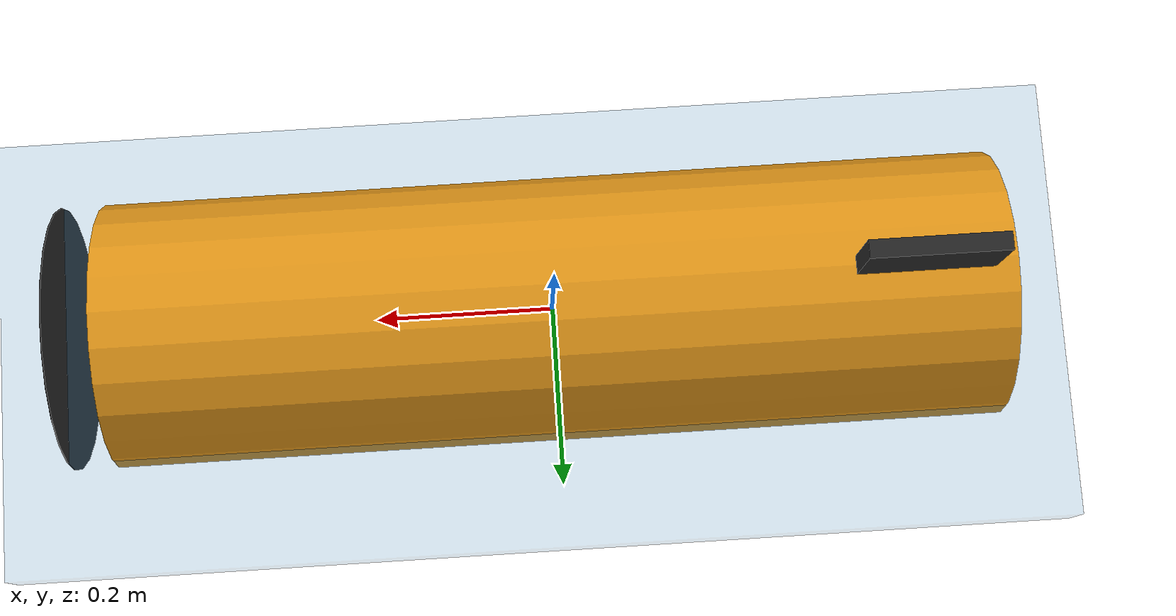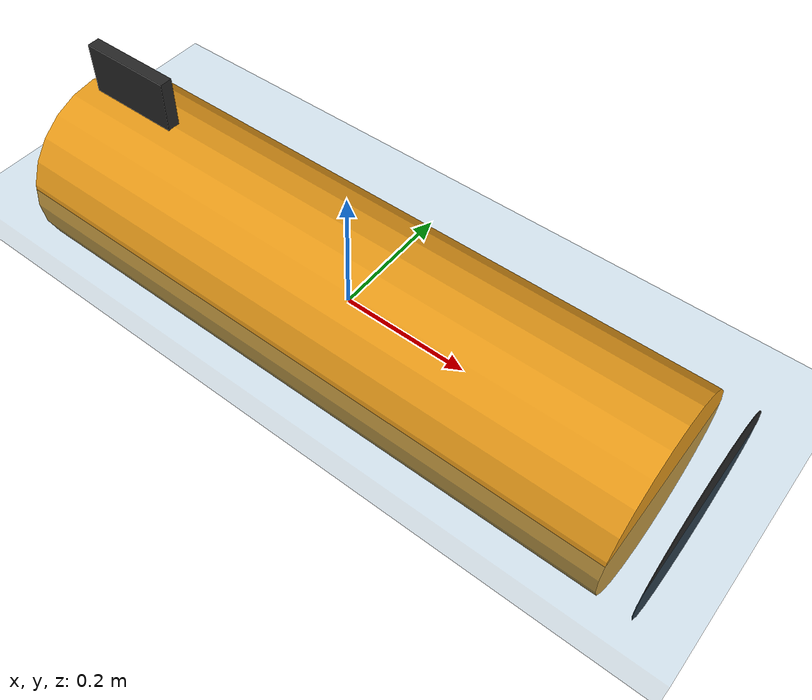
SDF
<?xml version="1.0"?>
<sdf version="1.9">
  <world name="auv_world">

    <physics name="1ms" type="dartsim">
      <max_step_size>0.001</max_step_size>
      <real_time_factor>1.0</real_time_factor>
    </physics>

    <plugin filename="gz-sim-physics-system" name="gz::sim::systems::Physics" />
    <plugin filename="gz-sim-user-commands-system" name="gz::sim::systems::UserCommands" />
    <plugin filename="gz-sim-scene-broadcaster-system" name="gz::sim::systems::SceneBroadcaster" />
    <plugin filename="gz-sim-sensors-system" name="gz::sim::systems::Sensors">
      <render_engine>ogre2</render_engine>
    </plugin>

    <plugin filename="gz-sim-buoyancy-system" name="gz::sim::systems::Buoyancy">
      <uniform_fluid_density>1000</uniform_fluid_density>
    </plugin>

    <scene>
      <ambient>0.35 0.45 0.55 1</ambient>
      <background>0.1 0.25 0.35 1</background>
      <grid>false</grid>
    </scene>

    <light type="directional" name="sun">
      <cast_shadows>true</cast_shadows>
      <pose>0 0 10 0 0 0</pose>
      <diffuse>0.7 0.8 0.85 1</diffuse>
      <specular>0.3 0.3 0.3 1</specular>
      <attenuation>
        <range>1000</range>
        <constant>0.9</constant>
        <linear>0.01</linear>
        <quadratic>0.001</quadratic>
      </attenuation>
      <direction>-0.3 0.2 -0.9</direction>
    </light>

    <!-- Seabed, ~6 m below the surface. -->
    <model name="seabed">
      <static>true</static>
      <pose>0 0 -25 0 0 0</pose>
      <link name="link">
        <collision name="collision">
          <geometry>
            <plane>
              <normal>0 0 1</normal>
              <size>60 60</size>
            </plane>
          </geometry>
        </collision>
        <visual name="visual">
          <geometry>
            <plane>
              <normal>0 0 1</normal>
              <size>60 60</size>
            </plane>
          </geometry>
          <material>
            <ambient>0.55 0.5 0.35 1</ambient>
            <diffuse>0.6 0.55 0.4 1</diffuse>
          </material>
        </visual>
      </link>
    </model>

    <!-- Waterline marker at z=0, visual-only (no collision), purely so the
         demo video shows depth relative to the surface. -->
    <model name="waterline">
      <static>true</static>
      <pose>0 0 0 0 0 0</pose>
      <link name="link">
        <visual name="visual">
          <transparency>0.85</transparency>
          <geometry>
            <plane>
              <normal>0 0 1</normal>
              <size>60 60</size>
            </plane>
          </geometry>
          <material>
            <ambient>0.2 0.5 0.7 0.4</ambient>
            <diffuse>0.2 0.5 0.7 0.4</diffuse>
          </material>
        </visual>
      </link>
    </model>

    <!-- Spawns at depth 0.0 (right at the waterline), matching
         VehicleSimModel's initial depth so the two backends start
         identically. -->
    <include>
      <uri>model://auv</uri>
      <name>auv</name>
      <pose>0 0 0 0 0 0</pose>
    </include>

  </world>
</sdf>

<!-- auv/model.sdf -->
<sdf version="1.9">
  <model name="auv">

    <link name="base_link">
      <inertial>
        <mass>70.7</mass>
        <inertia>
          <ixx>6.29</ixx>
          <iyy>6.29</iyy>
          <izz>0.795</izz>
          <ixy>0</ixy>
          <ixz>0</ixz>
          <iyz>0</iyz>
        </inertia>
      </inertial>

      <!-- Single collision = the buoyancy/physics volume. Cylinder's local
           z-axis is rotated onto the link's x-axis so "forward" is +x. -->
      <collision name="hull_collision">
        <pose>0 0 0 0 1.5708 0</pose>
        <geometry>
          <cylinder>
            <radius>0.15</radius>
            <length>1.0</length>
          </cylinder>
        </geometry>
      </collision>

      <visual name="hull_visual">
        <pose>0 0 0 0 1.5708 0</pose>
        <geometry>
          <cylinder>
            <radius>0.15</radius>
            <length>1.0</length>
          </cylinder>
        </geometry>
        <material>
          <ambient>0.85 0.55 0.05 1</ambient>
          <diffuse>0.9 0.6 0.1 1</diffuse>
          <specular>0.3 0.3 0.3 1</specular>
        </material>
      </visual>

      <!-- Nose cone: visual only (no collision), so it does not perturb the
           buoyancy volume computed from hull_collision. -->
      <visual name="nose_visual">
        <pose>0.55 0 0 0 1.5708 0</pose>
        <geometry>
          <cylinder>
            <radius>0.15</radius>
            <length>0.001</length>
          </cylinder>
        </geometry>
        <material>
          <ambient>0.1 0.1 0.1 1</ambient>
          <diffuse>0.15 0.15 0.15 1</diffuse>
        </material>
      </visual>

      <!-- Vertical fin, purely cosmetic: makes heading changes visible on
           the recorded demo video. -->
      <visual name="fin_visual">
        <pose>-0.4 0 0.13 0 0 0</pose>
        <geometry>
          <box>
            <size>0.15 0.02 0.2</size>
          </box>
        </geometry>
        <material>
          <ambient>0.1 0.1 0.1 1</ambient>
          <diffuse>0.15 0.15 0.15 1</diffuse>
        </material>
      </visual>
    </link>

    <plugin filename="gz-sim-velocity-control-system" name="gz::sim::systems::VelocityControl">
      <topic>/model/auv/cmd_vel</topic>
    </plugin>

    <plugin filename="gz-sim-odometry-publisher-system" name="gz::sim::systems::OdometryPublisher">
      <odom_frame>auv/odom</odom_frame>
      <robot_base_frame>auv/base_link</robot_base_frame>
      <odom_publish_frequency>30</odom_publish_frequency>
      <dimensions>3</dimensions>
    </plugin>
  </model>
</sdf>
